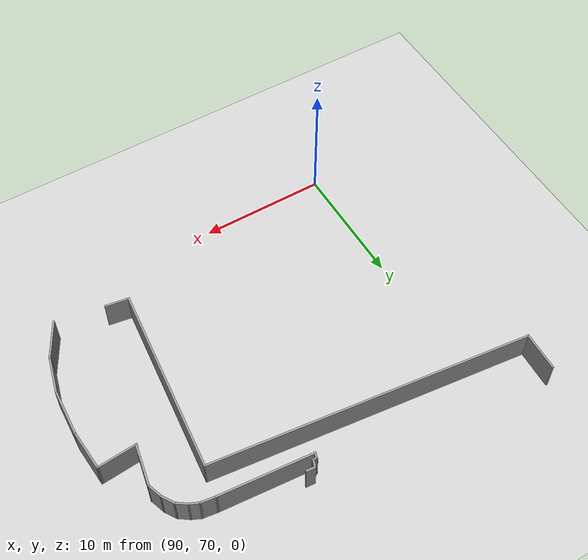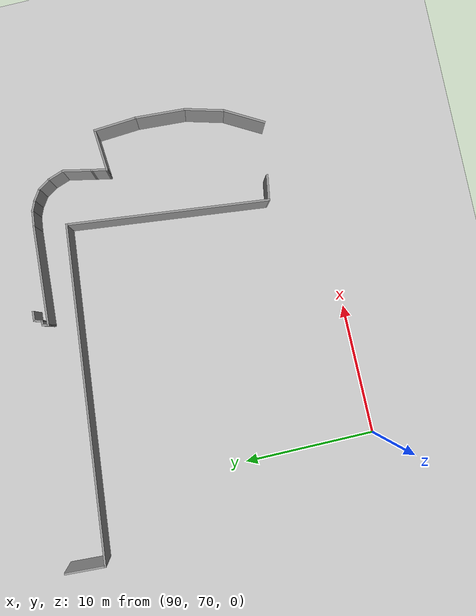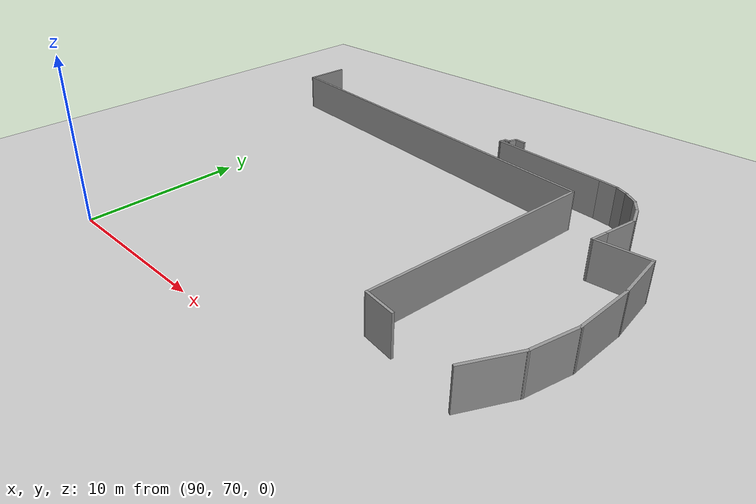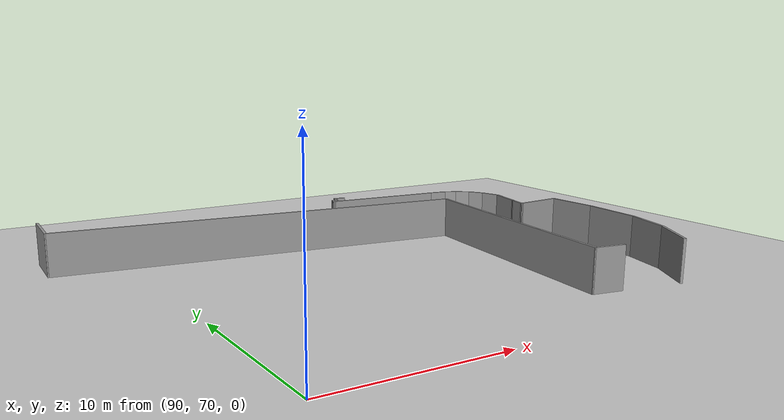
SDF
<sdf version="1.6">
 <world name="default">
  <model name="ground_plane">
   <static>1</static>
   <link name="link">
    <collision name="collision">
     <geometry><plane><normal>0 0 1</normal><size>100 100</size></plane></geometry>
     <surface><friction><ode><mu>100</mu><mu2>50</mu2></ode></friction></surface>
    </collision>
    <visual name="visual">
     <cast_shadows>0</cast_shadows>
     <geometry><plane><normal>0 0 1</normal><size>100 100</size></plane></geometry>
     <material>
      <script><uri>file://media/materials/scripts/gazebo.material</uri><name>Gazebo/Grey</name></script>
     </material>
    </visual>
   </link>
  </model>
  <model name="CMU">
   <pose>62.2844 43.535 0 0 -0 0</pose>
   <link name="Wall_152">
    <collision name="Wall_152_Collision">
     <geometry><box><size>3.21603 0.15 2.5</size></box></geometry>
     <pose>0 0 1.25 0 -0 0</pose>
    </collision>
    <visual name="Wall_152_Visual">
     <pose>0 0 1.25 0 -0 0</pose>
     <geometry><box><size>3.21603 0.15 2.5</size></box></geometry>
     <material>
      <script><uri>file://media/materials/scripts/gazebo.material</uri><name>Gazebo/Grey</name></script>
      <ambient>1 1 1 1</ambient>
     </material>
    </visual>
    <pose>52.8808 30.8812 0 0 -0 1.06031</pose>
   </link>
   <link name="Wall_153">
    <collision name="Wall_153_Collision">
     <geometry><box><size>3.0312 0.15 2.5</size></box></geometry>
     <pose>0 0 1.25 0 -0 0</pose>
    </collision>
    <visual name="Wall_153_Visual">
     <pose>0 0 1.25 0 -0 0</pose>
     <geometry><box><size>3.0312 0.15 2.5</size></box></geometry>
     <material>
      <script><uri>file://media/materials/scripts/gazebo.material</uri><name>Gazebo/Grey</name></script>
      <ambient>1 1 1 1</ambient>
     </material>
    </visual>
    <pose>54.0043 33.6098 0 0 -0 1.3078</pose>
   </link>
   <link name="Wall_154">
    <collision name="Wall_154_Collision">
     <geometry><box><size>3.79446 0.15 2.5</size></box></geometry>
     <pose>0 0 1.25 0 -0 0</pose>
    </collision>
    <visual name="Wall_154_Visual">
     <pose>0 0 1.25 0 -0 0</pose>
     <geometry><box><size>3.79446 0.15 2.5</size></box></geometry>
     <material>
      <script><uri>file://media/materials/scripts/gazebo.material</uri><name>Gazebo/Grey</name></script>
      <ambient>1 1 1 1</ambient>
     </material>
    </visual>
    <pose>54.4858 36.82 0 0 -0 1.51204</pose>
   </link>
   <link name="Wall_155">
    <collision name="Wall_155_Collision">
     <geometry><box><size>3.31389 0.15 2.5</size></box></geometry>
     <pose>0 0 1.25 0 -0 0</pose>
    </collision>
    <visual name="Wall_155_Visual">
     <pose>0 0 1.25 0 -0 0</pose>
     <geometry><box><size>3.31389 0.15 2.5</size></box></geometry>
     <material>
      <script><uri>file://media/materials/scripts/gazebo.material</uri><name>Gazebo/Grey</name></script>
      <ambient>1 1 1 1</ambient>
     </material>
    </visual>
    <pose>54.4858 40.2174 0 0 -0 1.63849</pose>
   </link>
   <link name="Wall_156">
    <collision name="Wall_156_Collision">
     <geometry><box><size>3.15377 0.15 2.5</size></box></geometry>
     <pose>0 0 1.25 0 -0 0</pose>
    </collision>
    <visual name="Wall_156_Visual">
     <pose>0 0 1.25 0 -0 0</pose>
     <geometry><box><size>3.15377 0.15 2.5</size></box></geometry>
     <material>
      <script><uri>file://media/materials/scripts/gazebo.material</uri><name>Gazebo/Grey</name></script>
      <ambient>1 1 1 1</ambient>
     </material>
    </visual>
    <pose>52.8808 41.6887 0 0 0 -3.07029</pose>
   </link>
   <link name="Wall_157">
    <collision name="Wall_157_Collision">
     <geometry><box><size>1.24124 0.15 2.5</size></box></geometry>
     <pose>0 0 1.25 0 -0 0</pose>
    </collision>
    <visual name="Wall_157_Visual">
     <pose>0 0 1.25 0 -0 0</pose>
     <geometry><box><size>1.24124 0.15 2.5</size></box></geometry>
     <material>
      <script><uri>file://media/materials/scripts/gazebo.material</uri><name>Gazebo/Grey</name></script>
      <ambient>1 1 1 1</ambient>
     </material>
    </visual>
    <pose>51.4897 42.1167 0 0 -0 1.3734</pose>
   </link>
   <link name="Wall_159">
    <collision name="Wall_159_Collision">
     <geometry><box><size>2.28004 0.15 2.5</size></box></geometry>
     <pose>0 0 1.25 0 -0 0</pose>
    </collision>
    <visual name="Wall_159_Visual">
     <pose>0 0 1.25 0 -0 0</pose>
     <geometry><box><size>2.28004 0.15 2.5</size></box></geometry>
     <material>
      <script><uri>file://media/materials/scripts/gazebo.material</uri><name>Gazebo/Grey</name></script>
      <ambient>1 1 1 1</ambient>
     </material>
    </visual>
    <pose>51.8107 43.695 0 0 -0 1.36848</pose>
   </link>
   <link name="Wall_160">
    <collision name="Wall_160_Collision">
     <geometry><box><size>1.33433 0.15 2.5</size></box></geometry>
     <pose>0 0 1.25 0 -0 0</pose>
    </collision>
    <visual name="Wall_160_Visual">
     <pose>0 0 1.25 0 -0 0</pose>
     <geometry><box><size>1.33433 0.15 2.5</size></box></geometry>
     <material>
      <script><uri>file://media/materials/scripts/gazebo.material</uri><name>Gazebo/Grey</name></script>
      <ambient>1 1 1 1</ambient>
     </material>
    </visual>
    <pose>51.8375 45.3001 0 0 -0 1.89255</pose>
   </link>
   <link name="Wall_161">
    <collision name="Wall_161_Collision">
     <geometry><box><size>1.15948 0.15 2.5</size></box></geometry>
     <pose>0 0 1.25 0 -0 0</pose>
    </collision>
    <visual name="Wall_161_Visual">
     <pose>0 0 1.25 0 -0 0</pose>
     <geometry><box><size>1.15948 0.15 2.5</size></box></geometry>
     <material>
      <script><uri>file://media/materials/scripts/gazebo.material</uri><name>Gazebo/Grey</name></script>
      <ambient>1 1 1 1</ambient>
     </material>
    </visual>
    <pose>51.3827 46.2899 0 0 -0 2.1294</pose>
   </link>
   <link name="Wall_162">
    <collision name="Wall_162_Collision">
     <geometry><box><size>1.07049 0.15 2.5</size></box></geometry>
     <pose>0 0 1.25 0 -0 0</pose>
    </collision>
    <visual name="Wall_162_Visual">
     <pose>0 0 1.25 0 -0 0</pose>
     <geometry><box><size>1.07049 0.15 2.5</size></box></geometry>
     <material>
      <script><uri>file://media/materials/scripts/gazebo.material</uri><name>Gazebo/Grey</name></script>
      <ambient>1 1 1 1</ambient>
     </material>
    </visual>
    <pose>50.7407 46.9855 0 0 -0 2.52134</pose>
   </link>
   <link name="Wall_163">
    <collision name="Wall_163_Collision">
     <geometry><box><size>0.916039 0.15 2.5</size></box></geometry>
     <pose>0 0 1.25 0 -0 0</pose>
    </collision>
    <visual name="Wall_163_Visual">
     <pose>0 0 1.25 0 -0 0</pose>
     <geometry><box><size>0.916039 0.15 2.5</size></box></geometry>
     <material>
      <script><uri>file://media/materials/scripts/gazebo.material</uri><name>Gazebo/Grey</name></script>
      <ambient>1 1 1 1</ambient>
     </material>
    </visual>
    <pose>50.0184 47.4135 0 0 -0 2.70919</pose>
   </link>
   <link name="Wall_164">
    <collision name="Wall_164_Collision">
     <geometry><box><size>1.28496 0.15 2.5</size></box></geometry>
     <pose>0 0 1.25 0 -0 0</pose>
    </collision>
    <visual name="Wall_164_Visual">
     <pose>0 0 1.25 0 -0 0</pose>
     <geometry><box><size>1.28496 0.15 2.5</size></box></geometry>
     <material>
      <script><uri>file://media/materials/scripts/gazebo.material</uri><name>Gazebo/Grey</name></script>
      <ambient>1 1 1 1</ambient>
     </material>
    </visual>
    <pose>49.1088 47.6542 0 0 -0 2.9997</pose>
   </link>
   <link name="Wall_165">
    <collision name="Wall_165_Collision">
     <geometry><box><size>7.45461 0.15 2.5</size></box></geometry>
     <pose>0 0 1.25 0 -0 0</pose>
    </collision>
    <visual name="Wall_165_Visual">
     <pose>0 0 1.25 0 -0 0</pose>
     <geometry><box><size>7.45461 0.15 2.5</size></box></geometry>
     <material>
      <script><uri>file://media/materials/scripts/gazebo.material</uri><name>Gazebo/Grey</name></script>
      <ambient>1 1 1 1</ambient>
     </material>
    </visual>
    <pose>44.9089 48.0555 0 0 -0 3.05358</pose>
   </link>
   <link name="Wall_166">
    <collision name="Wall_166_Collision">
     <geometry><box><size>0.539504 0.15 2.5</size></box></geometry>
     <pose>0 0 1.25 0 -0 0</pose>
    </collision>
    <visual name="Wall_166_Visual">
     <pose>0 0 1.25 0 -0 0</pose>
     <geometry><box><size>0.539504 0.15 2.5</size></box></geometry>
     <material>
      <script><uri>file://media/materials/scripts/gazebo.material</uri><name>Gazebo/Grey</name></script>
      <ambient>1 1 1 1</ambient>
     </material>
    </visual>
    <pose>41.3242 48.5638 0 0 -0 1.2925</pose>
   </link>
   <link name="Wall_167">
    <collision name="Wall_167_Collision">
     <geometry><box><size>0.417513 0.15 2.5</size></box></geometry>
     <pose>0 0 1.25 0 -0 0</pose>
    </collision>
    <visual name="Wall_167_Visual">
     <pose>0 0 1.25 0 -0 0</pose>
     <geometry><box><size>0.417513 0.15 2.5</size></box></geometry>
     <material>
      <script><uri>file://media/materials/scripts/gazebo.material</uri><name>Gazebo/Grey</name></script>
      <ambient>1 1 1 1</ambient>
     </material>
    </visual>
    <pose>41.5115 48.751 0 0 -0 0</pose>
   </link>
   <link name="Wall_168">
    <collision name="Wall_168_Collision">
     <geometry><box><size>0.657569 0.15 2.5</size></box></geometry>
     <pose>0 0 1.25 0 -0 0</pose>
    </collision>
    <visual name="Wall_168_Visual">
     <pose>0 0 1.25 0 -0 0</pose>
     <geometry><box><size>0.657569 0.15 2.5</size></box></geometry>
     <material>
      <script><uri>file://media/materials/scripts/gazebo.material</uri><name>Gazebo/Grey</name></script>
      <ambient>1 1 1 1</ambient>
     </material>
    </visual>
    <pose>41.7255 48.9918 0 0 -0 1.24905</pose>
   </link>
   <link name="Wall_172">
    <collision name="Wall_172_Collision">
     <geometry><box><size>0.740954 0.15 2.5</size></box></geometry>
     <pose>0 0 1.25 0 -0 0</pose>
    </collision>
    <visual name="Wall_172_Visual">
     <pose>0 0 1.25 0 -0 0</pose>
     <geometry><box><size>0.740954 0.15 2.5</size></box></geometry>
     <material>
      <script><uri>file://media/materials/scripts/gazebo.material</uri><name>Gazebo/Grey</name></script>
      <ambient>1 1 1 1</ambient>
     </material>
    </visual>
    <pose>42.1535 49.2593 0 0 0 -0.09066</pose>
   </link>
   <link name="Wall_195">
    <collision name="Wall_195_Collision">
     <geometry><box><size>3.12516 0.15 2.5</size></box></geometry>
     <pose>0 0 1.25 0 -0 0</pose>
    </collision>
    <visual name="Wall_195_Visual">
     <pose>0 0 1.25 0 -0 0</pose>
     <geometry><box><size>3.12516 0.15 2.5</size></box></geometry>
     <material>
      <script><uri>file://media/materials/scripts/gazebo.material</uri><name>Gazebo/Grey</name></script>
      <ambient>1 1 1 1</ambient>
     </material>
    </visual>
    <pose>23.1598 49.835 0 0 0 -1.61838</pose>
   </link>
   <link name="Wall_196">
    <collision name="Wall_196_Collision">
     <geometry><box><size>25.3737 0.15 2.5</size></box></geometry>
     <pose>0 0 1.25 0 -0 0</pose>
    </collision>
    <visual name="Wall_196_Visual">
     <pose>0 0 1.25 0 -0 0</pose>
     <geometry><box><size>25.3737 0.15 2.5</size></box></geometry>
     <material>
      <script><uri>file://media/materials/scripts/gazebo.material</uri><name>Gazebo/Grey</name></script>
      <ambient>1 1 1 1</ambient>
     </material>
    </visual>
    <pose>35.6131 46.8632 0 0 0 -0.118092</pose>
   </link>
   <link name="Wall_197">
    <collision name="Wall_197_Collision">
     <geometry><box><size>15.0978 0.15 2.5</size></box></geometry>
     <pose>0 0 1.25 0 -0 0</pose>
    </collision>
    <visual name="Wall_197_Visual">
     <pose>0 0 1.25 0 -0 0</pose>
     <geometry><box><size>15.0978 0.15 2.5</size></box></geometry>
     <material>
      <script><uri>file://media/materials/scripts/gazebo.material</uri><name>Gazebo/Grey</name></script>
      <ambient>1 1 1 1</ambient>
     </material>
    </visual>
    <pose>47.3234 37.9478 0 0 0 -1.67989</pose>
   </link>
   <link name="Wall_198">
    <collision name="Wall_198_Collision">
     <geometry><box><size>1.94143 0.15 2.5</size></box></geometry>
     <pose>0 0 1.25 0 -0 0</pose>
    </collision>
    <visual name="Wall_198_Visual">
     <pose>0 0 1.25 0 -0 0</pose>
     <geometry><box><size>1.94143 0.15 2.5</size></box></geometry>
     <material>
      <script><uri>file://media/materials/scripts/gazebo.material</uri><name>Gazebo/Grey</name></script>
      <ambient>1 1 1 1</ambient>
     </material>
    </visual>
    <pose>47.3941 30.3768 0 0 0 -0.158655</pose>
   </link>
   <static>1</static>
  </model>
 </world>
</sdf>
